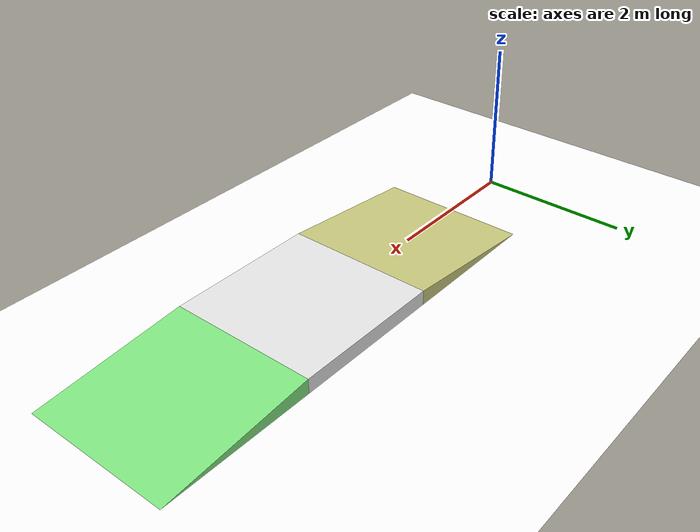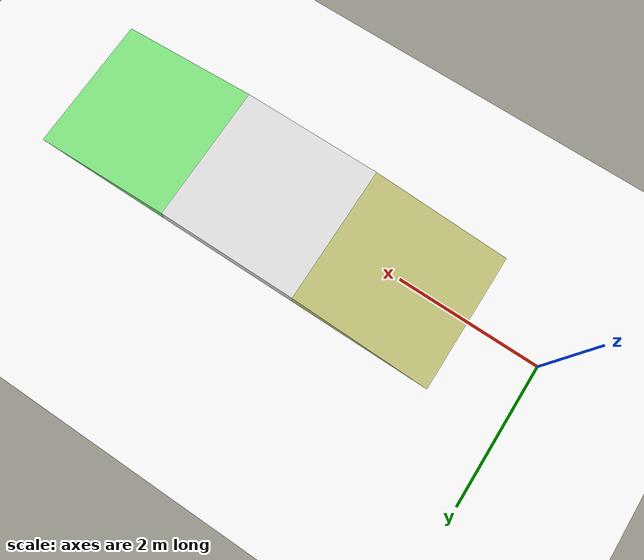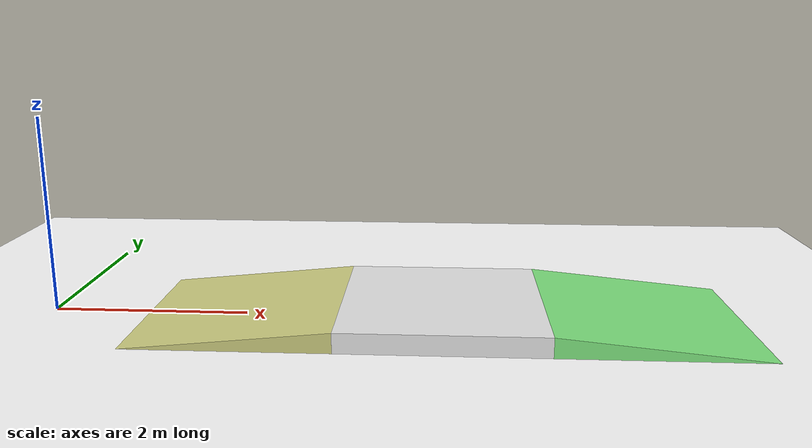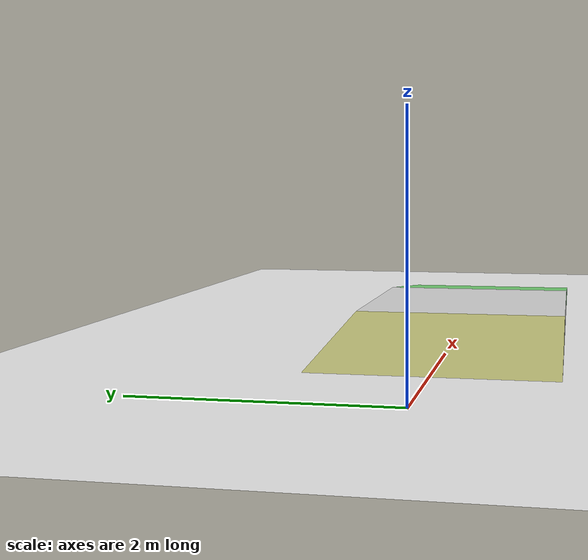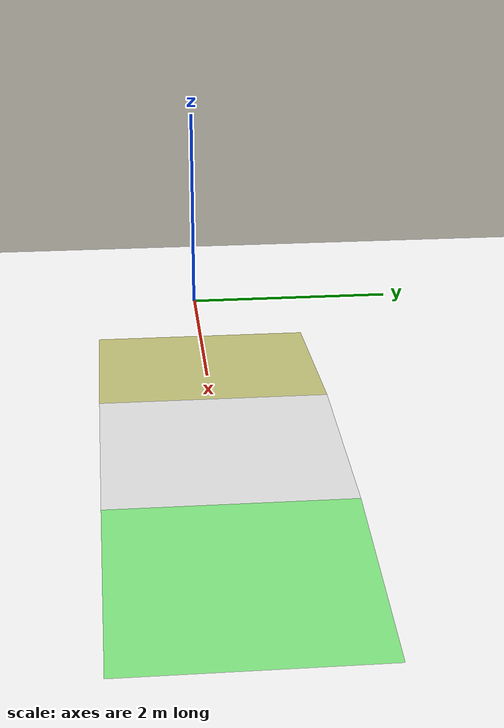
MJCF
<mujoco>

  <asset>
    <texture name="texplane" type="2d" builtin="checker" rgb1="1 1 1" rgb2="1 1 1" width="512" height="512" mark="cross" markrgb="0 0 0"/>
    <material name="matplane" reflectance="0.0" texture="texplane" texrepeat="1 1" texuniform="true"/>
    <mesh name="up"   vertex="0 0 0  2 0 0  0 2 0  2 2 0   0 0 0.00  2 0 0.20  0 2 0.00  2 2 0.20"/>
    <mesh name="flat" vertex="0 0 0  2 0 0  0 2 0  2 2 0   0 0 0.20  2 0 0.20  0 2 0.20  2 2 0.20"/>
    <mesh name="down" vertex="0 0 0  2 0 0  0 2 0  2 2 0   0 0 0.20  2 0 0     0 2 0.20  2 2 0"/>
  </asset>

  <worldbody>
    <geom group="1" name="floor" pos="0 0 0" size="0 0 0.25" type="plane" material="matplane" condim="3"/>
    <geom group="1" type="mesh" mesh="up"   pos="1 -1 0" rgba="0.8 0.8 0.5 1" friction="1 0.005 0.0001"/>
    <geom group="1" type="mesh" mesh="flat" pos="3 -1 0" rgba="0.9 0.9 0.9 1" friction="1 0.005 0.0001"/>
    <geom group="1" type="mesh" mesh="down" pos="5 -1 0" rgba="0.5 0.9 0.5 1" friction="1 0.005 0.0001"/>
  </worldbody>

</mujoco>
